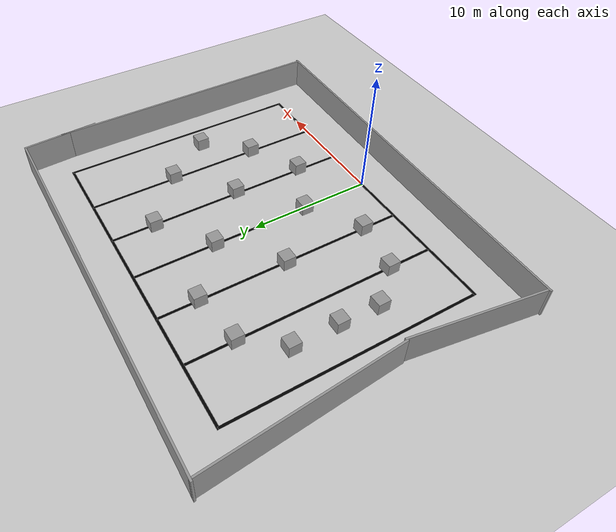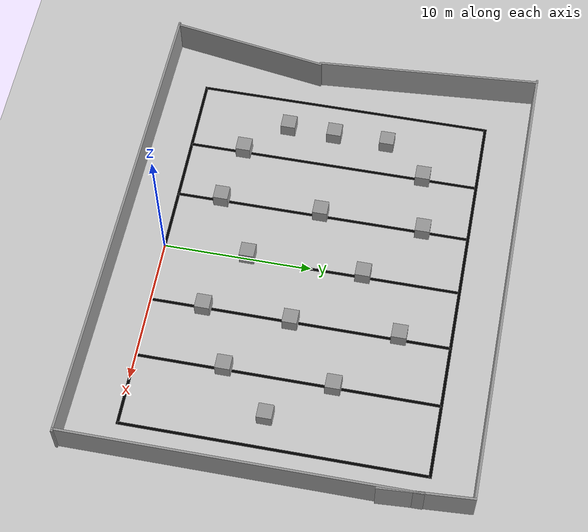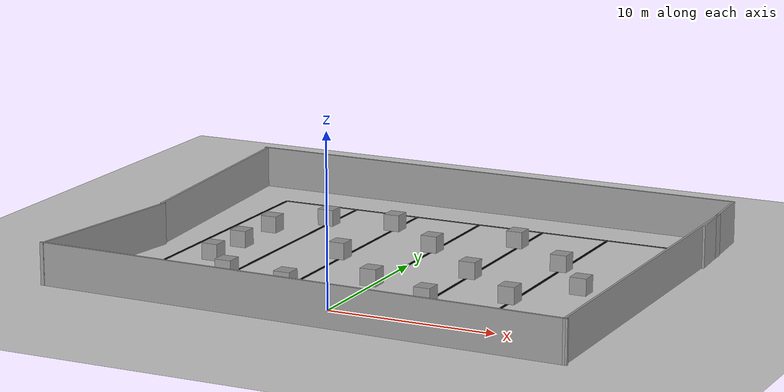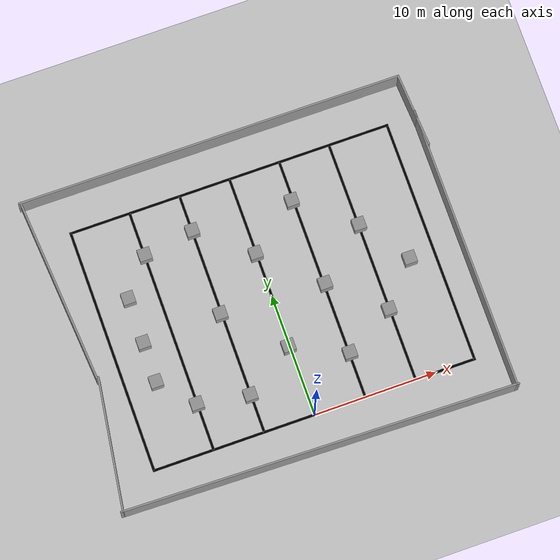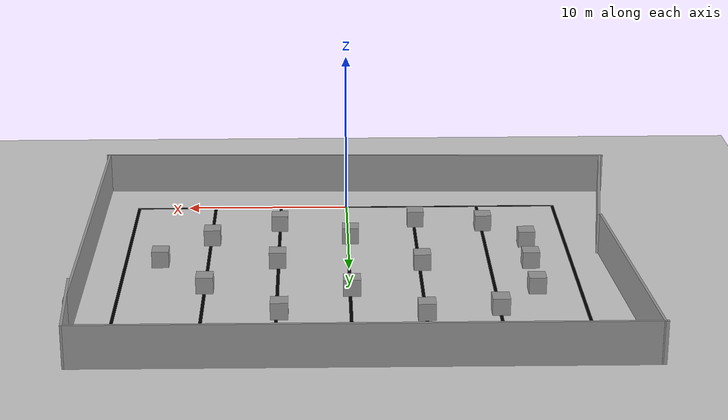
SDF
<sdf version="1.7">
 <world name="parkur">
  <light name="sun" type="directional">
   <pose>0 0 10 0 -0 0</pose>
   <diffuse>0.8 0.8 0.8 1</diffuse>
   <specular>0.2 0.2 0.2 1</specular>
   <attenuation>
    <range>1000</range>
    <constant>0.9</constant>
    <linear>0.01</linear>
    <quadratic>0.001</quadratic>
   </attenuation>
   <direction>-0.5 0.1 -0.9</direction>
   <spot><inner_angle>0</inner_angle><outer_angle>0</outer_angle><falloff>0</falloff></spot>
  </light>
  <model name="ground_plane">
   <static>1</static>
   <link name="link">
    <collision name="collision">
     <geometry><plane><normal>0 0 1</normal><size>100 100</size></plane></geometry>
     <surface><friction><ode><mu>100</mu><mu2>50</mu2></ode></friction></surface>
    </collision>
    <visual name="visual">
     <cast_shadows>0</cast_shadows>
     <geometry><plane><normal>0 0 1</normal><size>100 100</size></plane></geometry>
     <material>
      <script><uri>file://media/materials/scripts/gazebo.material</uri><name>Gazebo/Grey</name></script>
     </material>
    </visual>
   </link>
  </model>
  <model name="left_line">
   <static>1</static>
   <link name="line_link">
    <visual name="line_visual">
     <geometry><box><size>0.2 20 0.01</size></box></geometry>
     <material><ambient>0 0 0 1</ambient><diffuse>0 0 0 1</diffuse></material>
    </visual>
   </link>
   <pose>-13.2 10 0.005 0 -0 0</pose>
  </model>
  <model name="right_line">
   <static>1</static>
   <link name="line_link">
    <visual name="line_visual">
     <geometry><box><size>0.2 20 0.01</size></box></geometry>
     <material><ambient>0 0 0 1</ambient><diffuse>0 0 0 1</diffuse></material>
    </visual>
   </link>
   <pose>13.2 10 0.005 0 -0 0</pose>
  </model>
  <model name="top_line">
   <static>1</static>
   <link name="line_link">
    <visual name="line_visual">
     <geometry><box><size>26.6 0.2 0.01</size></box></geometry>
     <material><ambient>0 0 0 1</ambient><diffuse>0 0 0 1</diffuse></material>
    </visual>
   </link>
   <pose>0 20 0.005 0 -0 0</pose>
  </model>
  <model name="bottom_line">
   <static>1</static>
   <link name="line_link">
    <visual name="line_visual">
     <geometry><box><size>26.6 0.2 0.01</size></box></geometry>
     <material><ambient>0 0 0 1</ambient><diffuse>0 0 0 1</diffuse></material>
    </visual>
   </link>
   <pose>0 0 0.005 0 -0 0</pose>
  </model>
  <model name="vertical_line_1">
   <static>1</static>
   <link name="line_link">
    <visual name="line_visual">
     <geometry><box><size>0.2 20 0.01</size></box></geometry>
     <material><ambient>0 0 0 1</ambient><diffuse>0 0 0 1</diffuse></material>
    </visual>
   </link>
   <pose>-8.32 10 0.005 0 -0 0</pose>
  </model>
  <model name="vertical_line_2">
   <static>1</static>
   <link name="line_link">
    <visual name="line_visual">
     <geometry><box><size>0.2 20 0.01</size></box></geometry>
     <material><ambient>0 0 0 1</ambient><diffuse>0 0 0 1</diffuse></material>
    </visual>
   </link>
   <pose>-4.16 10 0.005 0 -0 0</pose>
  </model>
  <model name="vertical_line_3">
   <static>1</static>
   <link name="line_link">
    <visual name="line_visual">
     <geometry><box><size>0.2 20 0.01</size></box></geometry>
     <material><ambient>0 0 0 1</ambient><diffuse>0 0 0 1</diffuse></material>
    </visual>
   </link>
   <pose>0 10 0.005 0 -0 0</pose>
  </model>
  <model name="vertical_line_4">
   <static>1</static>
   <link name="line_link">
    <visual name="line_visual">
     <geometry><box><size>0.2 20 0.01</size></box></geometry>
     <material><ambient>0 0 0 1</ambient><diffuse>0 0 0 1</diffuse></material>
    </visual>
   </link>
   <pose>4.16 10 0.005 0 -0 0</pose>
  </model>
  <model name="vertical_line_5">
   <static>1</static>
   <link name="line_link">
    <visual name="line_visual">
     <geometry><box><size>0.2 20 0.01</size></box></geometry>
     <material><ambient>0 0 0 1</ambient><diffuse>0 0 0 1</diffuse></material>
    </visual>
   </link>
   <pose>8.32 10 0.005 0 -0 0</pose>
  </model>
  <gravity>0 0 -9.8</gravity>
  <magnetic_field>6e-06 2.3e-05 -4.2e-05</magnetic_field>
  <atmosphere type="adiabatic"/>
  <physics type="ode">
   <max_step_size>0.001</max_step_size>
   <real_time_factor>1</real_time_factor>
   <real_time_update_rate>1000</real_time_update_rate>
  </physics>
  <scene><ambient>0.4 0.4 0.4 1</ambient><background>0.7 0.7 0.7 1</background><shadows>1</shadows></scene>
  <audio><device>default</device></audio>
  <spherical_coordinates>
   <surface_model>EARTH_WGS84</surface_model>
   <latitude_deg>0</latitude_deg>
   <longitude_deg>0</longitude_deg>
   <elevation>0</elevation>
   <heading_deg>0</heading_deg>
  </spherical_coordinates>
  <model name="Untitled">
   <pose>-0.597502 9.83375 0 0 -0 0</pose>
   <link name="Wall_10">
    <collision name="Wall_10_Collision">
     <geometry><box><size>15.2891 0.15 2.5</size></box></geometry>
     <pose>0 0 1.25 0 -0 0</pose>
    </collision>
    <visual name="Wall_10_Visual">
     <pose>0 0 1.25 0 -0 0</pose>
     <geometry><box><size>15.2891 0.15 2.5</size></box></geometry>
     <material>
      <script><uri>file://media/materials/scripts/gazebo.material</uri><name>Gazebo/Grey</name></script>
      <ambient>1 1 1 1</ambient>
     </material>
     <meta><layer>0</layer></meta>
    </visual>
    <pose>-15.0094 5.62378 0 0 -0 -1.49733</pose>
   </link>
   <link name="Wall_4">
    <collision name="Wall_4_Collision">
     <geometry><box><size>10.7811 0.15 2.5</size></box></geometry>
     <pose>0 0 1.25 0 -0 0</pose>
    </collision>
    <visual name="Wall_4_Visual">
     <pose>0 0 1.25 0 -0 0</pose>
     <geometry><box><size>10.7811 0.15 2.5</size></box></geometry>
     <material>
      <script><uri>file://media/materials/scripts/gazebo.material</uri><name>Gazebo/Grey</name></script>
      <ambient>1 1 1 1</ambient>
     </material>
     <meta><layer>0</layer></meta>
    </visual>
    <pose>-15.1345 -7.17967 0 0 -0 -1.72271</pose>
   </link>
   <link name="Wall_5">
    <collision name="Wall_5_Collision">
     <geometry><box><size>32.2685 0.15 2.5</size></box></geometry>
     <pose>0 0 1.25 0 -0 0</pose>
    </collision>
    <visual name="Wall_5_Visual">
     <pose>0 0 1.25 0 -0 0</pose>
     <geometry><box><size>32.2685 0.15 2.5</size></box></geometry>
     <material>
      <script><uri>file://media/materials/scripts/gazebo.material</uri><name>Gazebo/Grey</name></script>
      <ambient>1 1 1 1</ambient>
     </material>
     <meta><layer>0</layer></meta>
    </visual>
    <pose>-0.007648 -12.8053 0 0 -0 -0.02312</pose>
   </link>
   <link name="Wall_6">
    <collision name="Wall_6_Collision">
     <geometry><box><size>23.25 0.15 2.5</size></box></geometry>
     <pose>0 0 1.25 0 -0 0</pose>
    </collision>
    <visual name="Wall_6_Visual">
     <pose>0 0 1.25 0 -0 0</pose>
     <geometry><box><size>23.25 0.15 2.5</size></box></geometry>
     <material>
      <script><uri>file://media/materials/scripts/gazebo.material</uri><name>Gazebo/Grey</name></script>
      <ambient>1 1 1 1</ambient>
     </material>
     <meta><layer>0</layer></meta>
    </visual>
    <pose>15.9236 -1.62651 0 0 -0 1.5708</pose>
   </link>
   <link name="Wall_8">
    <collision name="Wall_8_Collision">
     <geometry><box><size>6.13031 0.15 2.5</size></box></geometry>
     <pose>0 0 1.25 0 -0 0</pose>
    </collision>
    <visual name="Wall_8_Visual">
     <pose>0 0 1.25 0 -0 0</pose>
     <geometry><box><size>6.13031 0.15 2.5</size></box></geometry>
     <material>
      <script><uri>file://media/materials/scripts/gazebo.material</uri><name>Gazebo/Grey</name></script>
      <ambient>1 1 1 1</ambient>
     </material>
     <meta><layer>0</layer></meta>
    </visual>
    <pose>15.8742 10.0648 0 0 -0 1.63292</pose>
   </link>
   <link name="Wall_9">
    <collision name="Wall_9_Collision">
     <geometry><box><size>31.4039 0.15 2.5</size></box></geometry>
     <pose>0 0 1.25 0 -0 0</pose>
    </collision>
    <visual name="Wall_9_Visual">
     <pose>0 0 1.25 0 -0 0</pose>
     <geometry><box><size>31.4039 0.15 2.5</size></box></geometry>
     <material>
      <script><uri>file://media/materials/scripts/gazebo.material</uri><name>Gazebo/Grey</name></script>
      <ambient>1 1 1 1</ambient>
     </material>
     <meta><layer>0</layer></meta>
    </visual>
    <pose>-0.062009 13.111 0 0 -0 3.13763</pose>
   </link>
   <static>1</static>
  </model>
  <model name="unit_box">
   <pose>-8.38592 3.73736 0.499995 1e-05 -0 0</pose>
   <link name="link">
    <inertial>
     <mass>1</mass>
     <inertia>
      <ixx>0.166667</ixx>
      <ixy>0</ixy>
      <ixz>0</ixz>
      <iyy>0.166667</iyy>
      <iyz>0</iyz>
      <izz>0.166667</izz>
     </inertia>
    </inertial>
    <collision name="collision"><geometry><box><size>1 1 1</size></box></geometry></collision>
    <visual name="visual">
     <geometry><box><size>1 1 1</size></box></geometry>
     <material>
      <script><name>Gazebo/Grey</name><uri>file://media/materials/scripts/gazebo.material</uri></script>
     </material>
    </visual>
   </link>
  </model>
  <model name="unit_box_0">
   <pose>-4.29963 9.88049 0.499995 0 1e-05 0</pose>
   <link name="link">
    <inertial>
     <mass>1</mass>
     <inertia>
      <ixx>0.166667</ixx>
      <ixy>0</ixy>
      <ixz>0</ixz>
      <iyy>0.166667</iyy>
      <iyz>0</iyz>
      <izz>0.166667</izz>
     </inertia>
    </inertial>
    <collision name="collision"><geometry><box><size>1 1 1</size></box></geometry></collision>
    <visual name="visual">
     <geometry><box><size>1 1 1</size></box></geometry>
     <material>
      <script><name>Gazebo/Grey</name><uri>file://media/materials/scripts/gazebo.material</uri></script>
     </material>
    </visual>
   </link>
  </model>
  <model name="unit_box_1">
   <pose>-0.157794 5.68461 0.499995 -1e-05 -0 -0</pose>
   <link name="link">
    <inertial>
     <mass>1</mass>
     <inertia>
      <ixx>0.166667</ixx>
      <ixy>0</ixy>
      <ixz>0</ixz>
      <iyy>0.166667</iyy>
      <iyz>0</iyz>
      <izz>0.166667</izz>
     </inertia>
    </inertial>
    <collision name="collision"><geometry><box><size>1 1 1</size></box></geometry></collision>
    <visual name="visual">
     <geometry><box><size>1 1 1</size></box></geometry>
     <material>
      <script><name>Gazebo/Grey</name><uri>file://media/materials/scripts/gazebo.material</uri></script>
     </material>
    </visual>
   </link>
  </model>
  <model name="unit_box_2">
   <pose>3.98741 16.5861 0.499995 0 -1e-05 0</pose>
   <link name="link">
    <inertial>
     <mass>1</mass>
     <inertia>
      <ixx>0.166667</ixx>
      <ixy>0</ixy>
      <ixz>0</ixz>
      <iyy>0.166667</iyy>
      <iyz>0</iyz>
      <izz>0.166667</izz>
     </inertia>
    </inertial>
    <collision name="collision"><geometry><box><size>1 1 1</size></box></geometry></collision>
    <visual name="visual">
     <geometry><box><size>1 1 1</size></box></geometry>
     <material>
      <script><name>Gazebo/Grey</name><uri>file://media/materials/scripts/gazebo.material</uri></script>
     </material>
    </visual>
   </link>
  </model>
  <model name="unit_box_3">
   <pose>-4.17949 16.8913 0.499995 0 1e-05 0</pose>
   <link name="link">
    <inertial>
     <mass>1</mass>
     <inertia>
      <ixx>0.166667</ixx>
      <ixy>0</ixy>
      <ixz>0</ixz>
      <iyy>0.166667</iyy>
      <iyz>0</iyz>
      <izz>0.166667</izz>
     </inertia>
    </inertial>
    <collision name="collision"><geometry><box><size>1 1 1</size></box></geometry></collision>
    <visual name="visual">
     <geometry><box><size>1 1 1</size></box></geometry>
     <material>
      <script><name>Gazebo/Grey</name><uri>file://media/materials/scripts/gazebo.material</uri></script>
     </material>
    </visual>
   </link>
  </model>
  <model name="unit_box_4">
   <pose>4.17122 3.60734 0.499995 1e-05 -0 0</pose>
   <link name="link">
    <inertial>
     <mass>1</mass>
     <inertia>
      <ixx>0.166667</ixx>
      <ixy>0</ixy>
      <ixz>0</ixz>
      <iyy>0.166667</iyy>
      <iyz>0</iyz>
      <izz>0.166667</izz>
     </inertia>
    </inertial>
    <collision name="collision"><geometry><box><size>1 1 1</size></box></geometry></collision>
    <visual name="visual">
     <geometry><box><size>1 1 1</size></box></geometry>
     <material>
      <script><name>Gazebo/Grey</name><uri>file://media/materials/scripts/gazebo.material</uri></script>
     </material>
    </visual>
   </link>
  </model>
  <model name="unit_box_5">
   <pose>-0.101123 13.5106 0.499995 0 -1e-05 0</pose>
   <link name="link">
    <inertial>
     <mass>1</mass>
     <inertia>
      <ixx>0.166667</ixx>
      <ixy>0</ixy>
      <ixz>0</ixz>
      <iyy>0.166667</iyy>
      <iyz>0</iyz>
      <izz>0.166667</izz>
     </inertia>
    </inertial>
    <collision name="collision"><geometry><box><size>1 1 1</size></box></geometry></collision>
    <visual name="visual">
     <geometry><box><size>1 1 1</size></box></geometry>
     <material>
      <script><name>Gazebo/Grey</name><uri>file://media/materials/scripts/gazebo.material</uri></script>
     </material>
    </visual>
   </link>
  </model>
  <model name="unit_box_6">
   <pose>8.29897 13.0113 0.499995 -1e-05 -0 -0</pose>
   <link name="link">
    <inertial>
     <mass>1</mass>
     <inertia>
      <ixx>0.166667</ixx>
      <ixy>0</ixy>
      <ixz>0</ixz>
      <iyy>0.166667</iyy>
      <iyz>0</iyz>
      <izz>0.166667</izz>
     </inertia>
    </inertial>
    <collision name="collision"><geometry><box><size>1 1 1</size></box></geometry></collision>
    <visual name="visual">
     <geometry><box><size>1 1 1</size></box></geometry>
     <material>
      <script><name>Gazebo/Grey</name><uri>file://media/materials/scripts/gazebo.material</uri></script>
     </material>
    </visual>
   </link>
  </model>
  <model name="unit_box_7">
   <pose>-4.23672 3.03857 0.499995 1e-05 -0 0</pose>
   <link name="link">
    <inertial>
     <mass>1</mass>
     <inertia>
      <ixx>0.166667</ixx>
      <ixy>0</ixy>
      <ixz>0</ixz>
      <iyy>0.166667</iyy>
      <iyz>0</iyz>
      <izz>0.166667</izz>
     </inertia>
    </inertial>
    <collision name="collision"><geometry><box><size>1 1 1</size></box></geometry></collision>
    <visual name="visual">
     <geometry><box><size>1 1 1</size></box></geometry>
     <material>
      <script><name>Gazebo/Grey</name><uri>file://media/materials/scripts/gazebo.material</uri></script>
     </material>
    </visual>
   </link>
  </model>
  <model name="unit_box_8">
   <pose>8.22651 5.84575 0.499995 0 -1e-05 0</pose>
   <link name="link">
    <inertial>
     <mass>1</mass>
     <inertia>
      <ixx>0.166667</ixx>
      <ixy>0</ixy>
      <ixz>0</ixz>
      <iyy>0.166667</iyy>
      <iyz>0</iyz>
      <izz>0.166667</izz>
     </inertia>
    </inertial>
    <collision name="collision"><geometry><box><size>1 1 1</size></box></geometry></collision>
    <visual name="visual">
     <geometry><box><size>1 1 1</size></box></geometry>
     <material>
      <script><name>Gazebo/Grey</name><uri>file://media/materials/scripts/gazebo.material</uri></script>
     </material>
    </visual>
   </link>
  </model>
  <model name="unit_box_10">
   <pose>-8.32489 16.2701 0.499995 -1e-05 -0 -0</pose>
   <link name="link">
    <inertial>
     <mass>1</mass>
     <inertia>
      <ixx>0.166667</ixx>
      <ixy>0</ixy>
      <ixz>0</ixz>
      <iyy>0.166667</iyy>
      <iyz>0</iyz>
      <izz>0.166667</izz>
     </inertia>
    </inertial>
    <collision name="collision"><geometry><box><size>1 1 1</size></box></geometry></collision>
    <visual name="visual">
     <geometry><box><size>1 1 1</size></box></geometry>
     <material>
      <script><name>Gazebo/Grey</name><uri>file://media/materials/scripts/gazebo.material</uri></script>
     </material>
    </visual>
   </link>
  </model>
  <model name="unit_box_11">
   <pose>-10.709 9.69261 0.499995 -1e-05 -0 -0</pose>
   <link name="link">
    <inertial>
     <mass>1</mass>
     <inertia>
      <ixx>0.166667</ixx>
      <ixy>0</ixy>
      <ixz>0</ixz>
      <iyy>0.166667</iyy>
      <iyz>0</iyz>
      <izz>0.166667</izz>
     </inertia>
    </inertial>
    <collision name="collision"><geometry><box><size>1 1 1</size></box></geometry></collision>
    <visual name="visual">
     <geometry><box><size>1 1 1</size></box></geometry>
     <material>
      <script><name>Gazebo/Grey</name><uri>file://media/materials/scripts/gazebo.material</uri></script>
     </material>
    </visual>
   </link>
  </model>
  <model name="unit_box_12">
   <pose>4.20582 9.43419 0.499995 0 -1e-05 0</pose>
   <link name="link">
    <inertial>
     <mass>1</mass>
     <inertia>
      <ixx>0.166667</ixx>
      <ixy>0</ixy>
      <ixz>0</ixz>
      <iyy>0.166667</iyy>
      <iyz>0</iyz>
      <izz>0.166667</izz>
     </inertia>
    </inertial>
    <collision name="collision"><geometry><box><size>1 1 1</size></box></geometry></collision>
    <visual name="visual">
     <geometry><box><size>1 1 1</size></box></geometry>
     <material>
      <script><name>Gazebo/Grey</name><uri>file://media/materials/scripts/gazebo.material</uri></script>
     </material>
    </visual>
   </link>
  </model>
  <model name="unit_box_9">
   <pose>11.116 9.13447 0.499995 -1e-05 -0 -0</pose>
   <link name="link">
    <inertial>
     <mass>1</mass>
     <inertia>
      <ixx>0.166667</ixx>
      <ixy>0</ixy>
      <ixz>0</ixz>
      <iyy>0.166667</iyy>
      <iyz>0</iyz>
      <izz>0.166667</izz>
     </inertia>
    </inertial>
    <collision name="collision"><geometry><box><size>1 1 1</size></box></geometry></collision>
    <visual name="visual">
     <geometry><box><size>1 1 1</size></box></geometry>
     <material>
      <script><name>Gazebo/Grey</name><uri>file://media/materials/scripts/gazebo.material</uri></script>
     </material>
    </visual>
   </link>
  </model>
  <model name="unit_box_13">
   <pose>-10.6709 13.4033 0.499995 0 1e-05 0</pose>
   <link name="link">
    <inertial>
     <mass>1</mass>
     <inertia>
      <ixx>0.166667</ixx>
      <ixy>0</ixy>
      <ixz>0</ixz>
      <iyy>0.166667</iyy>
      <iyz>0</iyz>
      <izz>0.166667</izz>
     </inertia>
    </inertial>
    <collision name="collision"><geometry><box><size>1 1 1</size></box></geometry></collision>
    <visual name="visual">
     <geometry><box><size>1 1 1</size></box></geometry>
     <material>
      <script><name>Gazebo/Grey</name><uri>file://media/materials/scripts/gazebo.material</uri></script>
     </material>
    </visual>
   </link>
  </model>
  <model name="unit_box_14">
   <pose>-10.7931 6.44611 0.499995 -1e-05 -0 -0</pose>
   <link name="link">
    <inertial>
     <mass>1</mass>
     <inertia>
      <ixx>0.166667</ixx>
      <ixy>0</ixy>
      <ixz>0</ixz>
      <iyy>0.166667</iyy>
      <iyz>0</iyz>
      <izz>0.166667</izz>
     </inertia>
    </inertial>
    <collision name="collision"><geometry><box><size>1 1 1</size></box></geometry></collision>
    <visual name="visual">
     <geometry><box><size>1 1 1</size></box></geometry>
     <material>
      <script><name>Gazebo/Grey</name><uri>file://media/materials/scripts/gazebo.material</uri></script>
     </material>
    </visual>
   </link>
  </model>
 </world>
</sdf>
